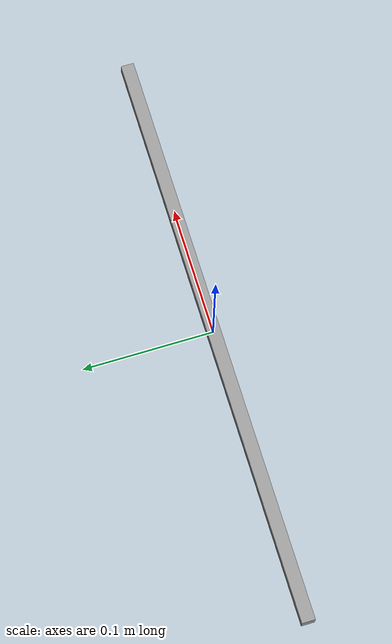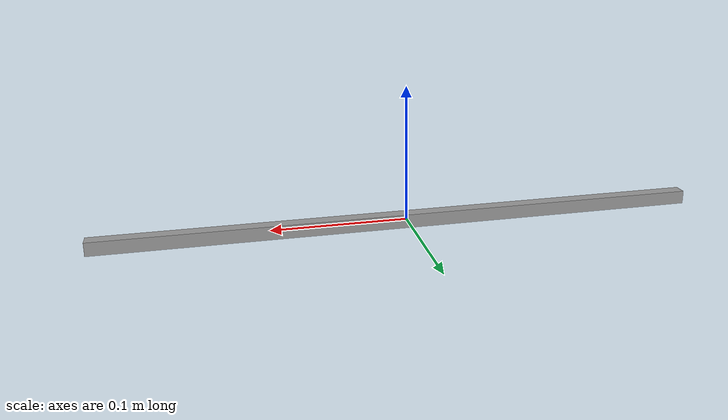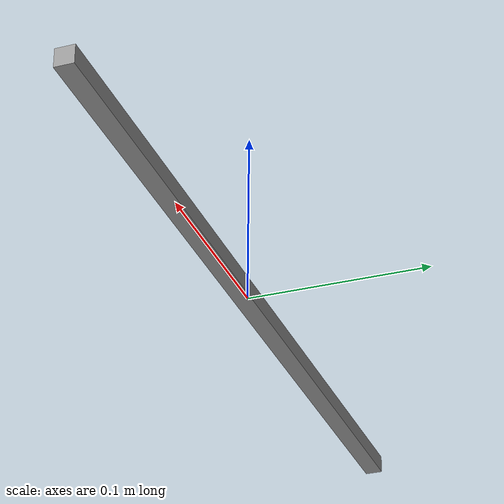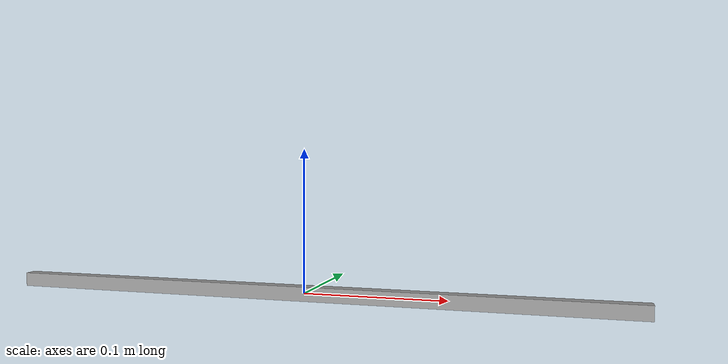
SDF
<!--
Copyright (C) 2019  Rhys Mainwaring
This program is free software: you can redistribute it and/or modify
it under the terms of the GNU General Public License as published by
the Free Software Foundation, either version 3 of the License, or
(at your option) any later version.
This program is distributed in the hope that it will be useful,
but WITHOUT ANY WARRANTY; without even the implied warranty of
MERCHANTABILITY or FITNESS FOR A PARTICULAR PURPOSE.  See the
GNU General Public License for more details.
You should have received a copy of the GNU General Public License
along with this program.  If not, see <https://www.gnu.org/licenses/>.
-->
<?xml version='1.0'?>
<sdf version='1.6'>

  <model name='chain_link'>
    <pose>0 0 0 0 0 0</pose>
    <static>false</static>
    <link name="base_link">
      <visual name="base_visual">
        <geometry>
          <box>
            <size>0.45 0.01 0.01</size>
          </box>
        </geometry>
        <material>
          <script>
            <name>Gazebo/Grey</name>
          </script>
        </material>
      </visual>
      <collision name="base_collision">
        <max_contacts>2</max_contacts>
        <geometry>
          <box>
            <size>0.45 0.01 0.01</size>
          </box>
        </geometry>
      </collision>
      <inertial>
        <pose>0 0 0 0 0 0</pose>
        <mass>0.3465</mass>
        <inertia>
          <ixx>0.00000577</ixx>
          <ixy>0</ixy>
          <iyy>0.00585</iyy>
          <iyz>0</iyz>
          <izz>0.00585</izz>
        </inertia>
      </inertial>
    </link>
  </model>
</sdf>
